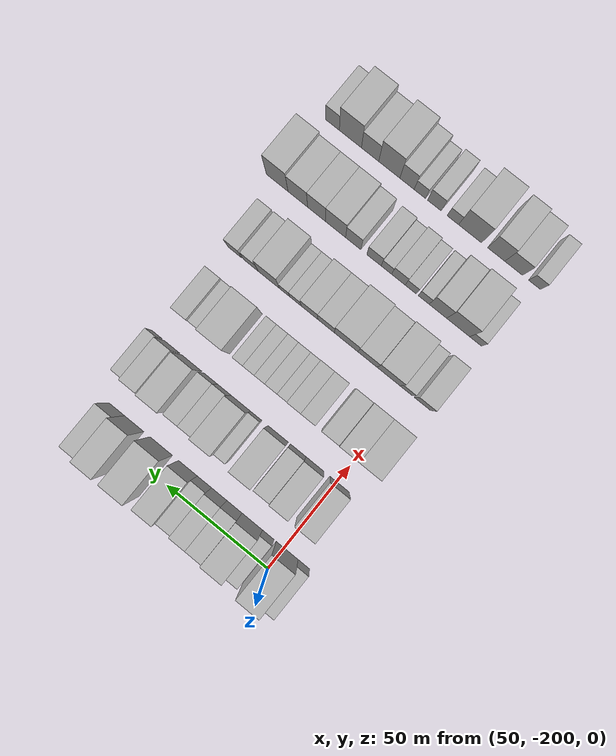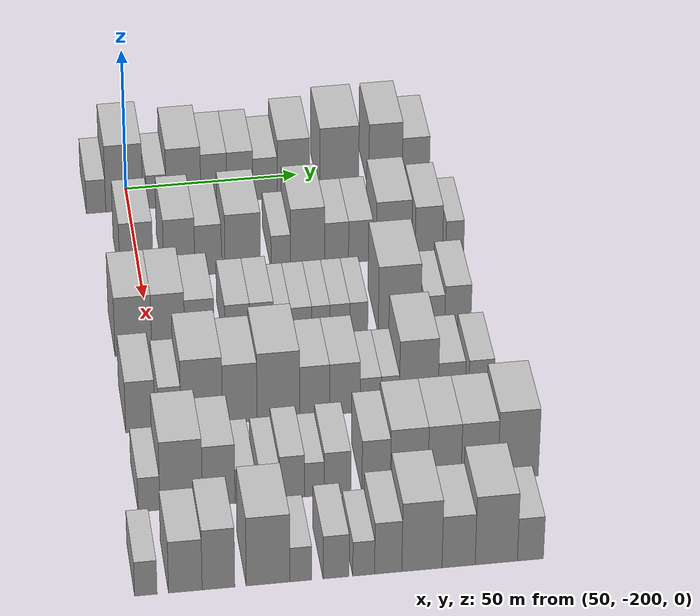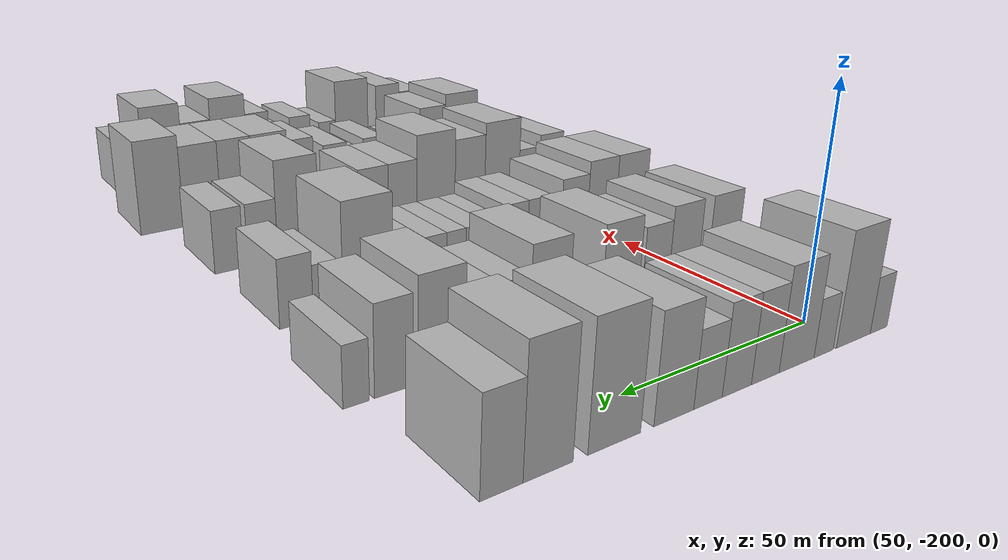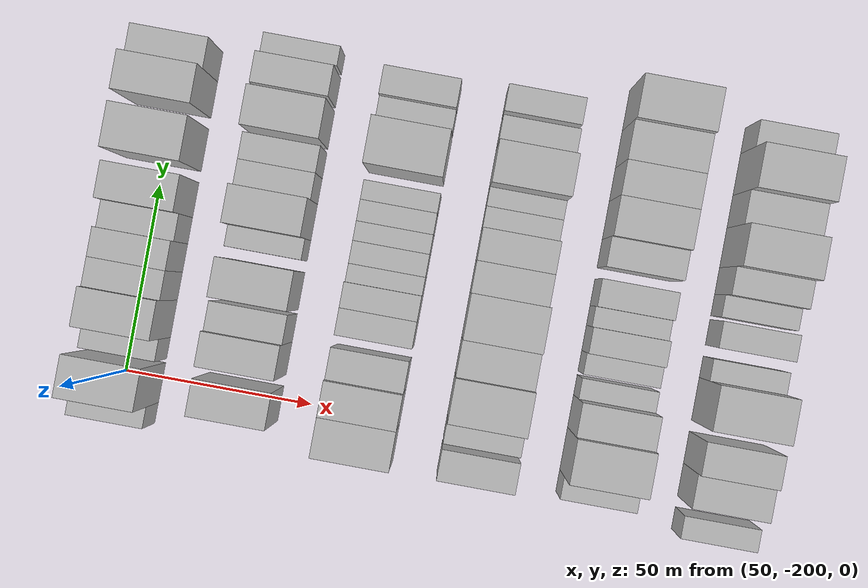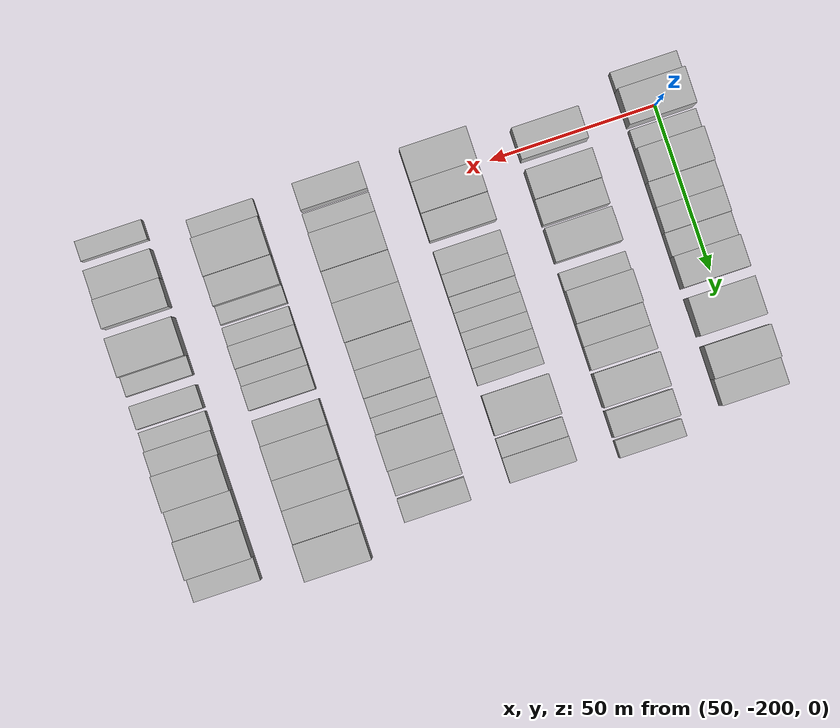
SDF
<sdf version="1.6">
 <world name="default">
  <model name="building_40">
   <static>1</static>
   <pose>50.0000 -209.6688 0 0.000000 0.000000 0.000000</pose>
   <link name="link">
    <pose>0 0 6.00 0 0 0</pose>
    <collision name="collision"><geometry><box><size>20.0000 5.6020 12.0000</size></box></geometry></collision>
    <visual name="visual">
     <cast_shadows>0</cast_shadows>
     <geometry><box><size>20.0000 5.6020 12.0000</size></box></geometry>
     <material>
      <script>
       <uri>model://HANNAS_wall/materials/scripts</uri>
       <uri>model://HANNAS_wall/materials/textures</uri>
       <name>vrc/HANNAS_wall</name>
      </script>
     </material>
    </visual>
   </link>
  </model>
  <model name="building_41">
   <static>1</static>
   <pose>50.0000 -201.4734 0 0.000000 0.000000 0.000000</pose>
   <link name="link">
    <pose>0 0 12.00 0 0 0</pose>
    <collision name="collision"><geometry><box><size>20.0000 10.7889 24.0000</size></box></geometry></collision>
    <visual name="visual">
     <cast_shadows>0</cast_shadows>
     <geometry><box><size>20.0000 10.7889 24.0000</size></box></geometry>
     <material>
      <script>
       <uri>model://HANNAS_wall/materials/scripts</uri>
       <uri>model://HANNAS_wall/materials/textures</uri>
       <name>vrc/HANNAS_wall</name>
      </script>
     </material>
    </visual>
   </link>
  </model>
  <model name="building_42">
   <static>1</static>
   <pose>50.0000 -192.1820 0 0.000000 0.000000 0.000000</pose>
   <link name="link">
    <pose>0 0 6.00 0 0 0</pose>
    <collision name="collision"><geometry><box><size>20.0000 5.7938 12.0000</size></box></geometry></collision>
    <visual name="visual">
     <cast_shadows>0</cast_shadows>
     <geometry><box><size>20.0000 5.7938 12.0000</size></box></geometry>
     <material>
      <script>
       <uri>model://HANNAS_wall/materials/scripts</uri>
       <uri>model://HANNAS_wall/materials/textures</uri>
       <name>vrc/HANNAS_wall</name>
      </script>
     </material>
    </visual>
   </link>
  </model>
  <model name="building_43">
   <static>1</static>
   <pose>50.0000 -184.2456 0 0.000000 0.000000 0.000000</pose>
   <link name="link">
    <pose>0 0 10.50 0 0 0</pose>
    <collision name="collision"><geometry><box><size>20.0000 10.0789 21.0000</size></box></geometry></collision>
    <visual name="visual">
     <cast_shadows>0</cast_shadows>
     <geometry><box><size>20.0000 10.0789 21.0000</size></box></geometry>
     <material>
      <script>
       <uri>model://HANNAS_wall/materials/scripts</uri>
       <uri>model://HANNAS_wall/materials/textures</uri>
       <name>vrc/HANNAS_wall</name>
      </script>
     </material>
    </visual>
   </link>
  </model>
  <model name="building_44">
   <static>1</static>
   <pose>50.0000 -175.4251 0 0.000000 0.000000 0.000000</pose>
   <link name="link">
    <pose>0 0 9.00 0 0 0</pose>
    <collision name="collision"><geometry><box><size>20.0000 7.5622 18.0000</size></box></geometry></collision>
    <visual name="visual">
     <cast_shadows>0</cast_shadows>
     <geometry><box><size>20.0000 7.5622 18.0000</size></box></geometry>
     <material>
      <script>
       <uri>model://HANNAS_wall/materials/scripts</uri>
       <uri>model://HANNAS_wall/materials/textures</uri>
       <name>vrc/HANNAS_wall</name>
      </script>
     </material>
    </visual>
   </link>
  </model>
  <model name="building_45">
   <static>1</static>
   <pose>50.0000 -167.8421 0 0.000000 0.000000 0.000000</pose>
   <link name="link">
    <pose>0 0 9.00 0 0 0</pose>
    <collision name="collision"><geometry><box><size>20.0000 7.6039 18.0000</size></box></geometry></collision>
    <visual name="visual">
     <cast_shadows>0</cast_shadows>
     <geometry><box><size>20.0000 7.6039 18.0000</size></box></geometry>
     <material>
      <script>
       <uri>model://HANNAS_wall/materials/scripts</uri>
       <uri>model://HANNAS_wall/materials/textures</uri>
       <name>vrc/HANNAS_wall</name>
      </script>
     </material>
    </visual>
   </link>
  </model>
  <model name="building_46">
   <static>1</static>
   <pose>50.0000 -160.4901 0 0.000000 0.000000 0.000000</pose>
   <link name="link">
    <pose>0 0 7.50 0 0 0</pose>
    <collision name="collision"><geometry><box><size>20.0000 7.0999 15.0000</size></box></geometry></collision>
    <visual name="visual">
     <cast_shadows>0</cast_shadows>
     <geometry><box><size>20.0000 7.0999 15.0000</size></box></geometry>
     <material>
      <script>
       <uri>model://HANNAS_wall/materials/scripts</uri>
       <uri>model://HANNAS_wall/materials/textures</uri>
       <name>vrc/HANNAS_wall</name>
      </script>
     </material>
    </visual>
   </link>
  </model>
  <model name="building_47">
   <static>1</static>
   <pose>50.0000 -152.2340 0 0.000000 0.000000 0.000000</pose>
   <link name="link">
    <pose>0 0 10.50 0 0 0</pose>
    <collision name="collision"><geometry><box><size>20.0000 9.4122 21.0000</size></box></geometry></collision>
    <visual name="visual">
     <cast_shadows>0</cast_shadows>
     <geometry><box><size>20.0000 9.4122 21.0000</size></box></geometry>
     <material>
      <script>
       <uri>model://HANNAS_wall/materials/scripts</uri>
       <uri>model://HANNAS_wall/materials/textures</uri>
       <name>vrc/HANNAS_wall</name>
      </script>
     </material>
    </visual>
   </link>
  </model>
  <model name="building_48">
   <static>1</static>
   <pose>50.0000 -138.8351 0 0.000000 0.000000 0.000000</pose>
   <link name="link">
    <pose>0 0 12.00 0 0 0</pose>
    <collision name="collision"><geometry><box><size>20.0000 11.3855 24.0000</size></box></geometry></collision>
    <visual name="visual">
     <cast_shadows>0</cast_shadows>
     <geometry><box><size>20.0000 11.3855 24.0000</size></box></geometry>
     <material>
      <script>
       <uri>model://HANNAS_wall/materials/scripts</uri>
       <uri>model://HANNAS_wall/materials/textures</uri>
       <name>vrc/HANNAS_wall</name>
      </script>
     </material>
    </visual>
   </link>
  </model>
  <model name="building_49">
   <static>1</static>
   <pose>50.0000 -125.2403 0 0.000000 0.000000 0.000000</pose>
   <link name="link">
    <pose>0 0 12.00 0 0 0</pose>
    <collision name="collision"><geometry><box><size>20.0000 9.8042 24.0000</size></box></geometry></collision>
    <visual name="visual">
     <cast_shadows>0</cast_shadows>
     <geometry><box><size>20.0000 9.8042 24.0000</size></box></geometry>
     <material>
      <script>
       <uri>model://HANNAS_wall/materials/scripts</uri>
       <uri>model://HANNAS_wall/materials/textures</uri>
       <name>vrc/HANNAS_wall</name>
      </script>
     </material>
    </visual>
   </link>
  </model>
  <model name="building_50">
   <static>1</static>
   <pose>50.0000 -116.3596 0 0.000000 0.000000 0.000000</pose>
   <link name="link">
    <pose>0 0 9.00 0 0 0</pose>
    <collision name="collision"><geometry><box><size>20.0000 7.9570 18.0000</size></box></geometry></collision>
    <visual name="visual">
     <cast_shadows>0</cast_shadows>
     <geometry><box><size>20.0000 7.9570 18.0000</size></box></geometry>
     <material>
      <script>
       <uri>model://HANNAS_wall/materials/scripts</uri>
       <uri>model://HANNAS_wall/materials/textures</uri>
       <name>vrc/HANNAS_wall</name>
      </script>
     </material>
    </visual>
   </link>
  </model>
  <model name="building_166">
   <static>1</static>
   <pose>82.0000 -201.2037 0 0.000000 0.000000 0.000000</pose>
   <link name="link">
    <pose>0 0 10.50 0 0 0</pose>
    <collision name="collision"><geometry><box><size>20.0000 9.4727 21.0000</size></box></geometry></collision>
    <visual name="visual">
     <cast_shadows>0</cast_shadows>
     <geometry><box><size>20.0000 9.4727 21.0000</size></box></geometry>
     <material>
      <script>
       <uri>model://HANNAS_wall/materials/scripts</uri>
       <uri>model://HANNAS_wall/materials/textures</uri>
       <name>vrc/HANNAS_wall</name>
      </script>
     </material>
    </visual>
   </link>
  </model>
  <model name="building_167">
   <static>1</static>
   <pose>82.0000 -189.0316 0 0.000000 0.000000 0.000000</pose>
   <link name="link">
    <pose>0 0 10.50 0 0 0</pose>
    <collision name="collision"><geometry><box><size>20.0000 8.8713 21.0000</size></box></geometry></collision>
    <visual name="visual">
     <cast_shadows>0</cast_shadows>
     <geometry><box><size>20.0000 8.8713 21.0000</size></box></geometry>
     <material>
      <script>
       <uri>model://HANNAS_wall/materials/scripts</uri>
       <uri>model://HANNAS_wall/materials/textures</uri>
       <name>vrc/HANNAS_wall</name>
      </script>
     </material>
    </visual>
   </link>
  </model>
  <model name="building_168">
   <static>1</static>
   <pose>82.0000 -180.7871 0 0.000000 0.000000 0.000000</pose>
   <link name="link">
    <pose>0 0 9.00 0 0 0</pose>
    <collision name="collision"><geometry><box><size>20.0000 7.6177 18.0000</size></box></geometry></collision>
    <visual name="visual">
     <cast_shadows>0</cast_shadows>
     <geometry><box><size>20.0000 7.6177 18.0000</size></box></geometry>
     <material>
      <script>
       <uri>model://HANNAS_wall/materials/scripts</uri>
       <uri>model://HANNAS_wall/materials/textures</uri>
       <name>vrc/HANNAS_wall</name>
      </script>
     </material>
    </visual>
   </link>
  </model>
  <model name="building_169">
   <static>1</static>
   <pose>82.0000 -170.9041 0 0.000000 0.000000 0.000000</pose>
   <link name="link">
    <pose>0 0 10.50 0 0 0</pose>
    <collision name="collision"><geometry><box><size>20.0000 10.1482 21.0000</size></box></geometry></collision>
    <visual name="visual">
     <cast_shadows>0</cast_shadows>
     <geometry><box><size>20.0000 10.1482 21.0000</size></box></geometry>
     <material>
      <script>
       <uri>model://HANNAS_wall/materials/scripts</uri>
       <uri>model://HANNAS_wall/materials/textures</uri>
       <name>vrc/HANNAS_wall</name>
      </script>
     </material>
    </visual>
   </link>
  </model>
  <model name="building_170">
   <static>1</static>
   <pose>82.0000 -160.0525 0 0.000000 0.000000 0.000000</pose>
   <link name="link">
    <pose>0 0 6.00 0 0 0</pose>
    <collision name="collision"><geometry><box><size>20.0000 5.5549 12.0000</size></box></geometry></collision>
    <visual name="visual">
     <cast_shadows>0</cast_shadows>
     <geometry><box><size>20.0000 5.5549 12.0000</size></box></geometry>
     <material>
      <script>
       <uri>model://HANNAS_wall/materials/scripts</uri>
       <uri>model://HANNAS_wall/materials/textures</uri>
       <name>vrc/HANNAS_wall</name>
      </script>
     </material>
    </visual>
   </link>
  </model>
  <model name="building_171">
   <static>1</static>
   <pose>82.0000 -152.3787 0 0.000000 0.000000 0.000000</pose>
   <link name="link">
    <pose>0 0 10.50 0 0 0</pose>
    <collision name="collision"><geometry><box><size>20.0000 9.7927 21.0000</size></box></geometry></collision>
    <visual name="visual">
     <cast_shadows>0</cast_shadows>
     <geometry><box><size>20.0000 9.7927 21.0000</size></box></geometry>
     <material>
      <script>
       <uri>model://HANNAS_wall/materials/scripts</uri>
       <uri>model://HANNAS_wall/materials/textures</uri>
       <name>vrc/HANNAS_wall</name>
      </script>
     </material>
    </visual>
   </link>
  </model>
  <model name="building_172">
   <static>1</static>
   <pose>82.0000 -144.0379 0 0.000000 0.000000 0.000000</pose>
   <link name="link">
    <pose>0 0 7.50 0 0 0</pose>
    <collision name="collision"><geometry><box><size>20.0000 6.8888 15.0000</size></box></geometry></collision>
    <visual name="visual">
     <cast_shadows>0</cast_shadows>
     <geometry><box><size>20.0000 6.8888 15.0000</size></box></geometry>
     <material>
      <script>
       <uri>model://HANNAS_wall/materials/scripts</uri>
       <uri>model://HANNAS_wall/materials/textures</uri>
       <name>vrc/HANNAS_wall</name>
      </script>
     </material>
    </visual>
   </link>
  </model>
  <model name="building_173">
   <static>1</static>
   <pose>82.0000 -137.1095 0 0.000000 0.000000 0.000000</pose>
   <link name="link">
    <pose>0 0 7.50 0 0 0</pose>
    <collision name="collision"><geometry><box><size>20.0000 6.9681 15.0000</size></box></geometry></collision>
    <visual name="visual">
     <cast_shadows>0</cast_shadows>
     <geometry><box><size>20.0000 6.9681 15.0000</size></box></geometry>
     <material>
      <script>
       <uri>model://HANNAS_wall/materials/scripts</uri>
       <uri>model://HANNAS_wall/materials/textures</uri>
       <name>vrc/HANNAS_wall</name>
      </script>
     </material>
    </visual>
   </link>
  </model>
  <model name="building_174">
   <static>1</static>
   <pose>82.0000 -127.5402 0 0.000000 0.000000 0.000000</pose>
   <link name="link">
    <pose>0 0 10.50 0 0 0</pose>
    <collision name="collision"><geometry><box><size>20.0000 10.1705 21.0000</size></box></geometry></collision>
    <visual name="visual">
     <cast_shadows>0</cast_shadows>
     <geometry><box><size>20.0000 10.1705 21.0000</size></box></geometry>
     <material>
      <script>
       <uri>model://HANNAS_wall/materials/scripts</uri>
       <uri>model://HANNAS_wall/materials/textures</uri>
       <name>vrc/HANNAS_wall</name>
      </script>
     </material>
    </visual>
   </link>
  </model>
  <model name="building_175">
   <static>1</static>
   <pose>82.0000 -117.4923 0 0.000000 0.000000 0.000000</pose>
   <link name="link">
    <pose>0 0 9.00 0 0 0</pose>
    <collision name="collision"><geometry><box><size>20.0000 7.9252 18.0000</size></box></geometry></collision>
    <visual name="visual">
     <cast_shadows>0</cast_shadows>
     <geometry><box><size>20.0000 7.9252 18.0000</size></box></geometry>
     <material>
      <script>
       <uri>model://HANNAS_wall/materials/scripts</uri>
       <uri>model://HANNAS_wall/materials/textures</uri>
       <name>vrc/HANNAS_wall</name>
      </script>
     </material>
    </visual>
   </link>
  </model>
  <model name="building_176">
   <static>1</static>
   <pose>82.0000 -109.9590 0 0.000000 0.000000 0.000000</pose>
   <link name="link">
    <pose>0 0 6.00 0 0 0</pose>
    <collision name="collision"><geometry><box><size>20.0000 5.1414 12.0000</size></box></geometry></collision>
    <visual name="visual">
     <cast_shadows>0</cast_shadows>
     <geometry><box><size>20.0000 5.1414 12.0000</size></box></geometry>
     <material>
      <script>
       <uri>model://HANNAS_wall/materials/scripts</uri>
       <uri>model://HANNAS_wall/materials/textures</uri>
       <name>vrc/HANNAS_wall</name>
      </script>
     </material>
    </visual>
   </link>
  </model>
  <model name="building_285">
   <static>1</static>
   <pose>114.0000 -205.4262 0 0.000000 0.000000 0.000000</pose>
   <link name="link">
    <pose>0 0 10.50 0 0 0</pose>
    <collision name="collision"><geometry><box><size>20.0000 10.2493 21.0000</size></box></geometry></collision>
    <visual name="visual">
     <cast_shadows>0</cast_shadows>
     <geometry><box><size>20.0000 10.2493 21.0000</size></box></geometry>
     <material>
      <script>
       <uri>model://HANNAS_wall/materials/scripts</uri>
       <uri>model://HANNAS_wall/materials/textures</uri>
       <name>vrc/HANNAS_wall</name>
      </script>
     </material>
    </visual>
   </link>
  </model>
  <model name="building_286">
   <static>1</static>
   <pose>114.0000 -195.6863 0 0.000000 0.000000 0.000000</pose>
   <link name="link">
    <pose>0 0 10.50 0 0 0</pose>
    <collision name="collision"><geometry><box><size>20.0000 9.2305 21.0000</size></box></geometry></collision>
    <visual name="visual">
     <cast_shadows>0</cast_shadows>
     <geometry><box><size>20.0000 9.2305 21.0000</size></box></geometry>
     <material>
      <script>
       <uri>model://HANNAS_wall/materials/scripts</uri>
       <uri>model://HANNAS_wall/materials/textures</uri>
       <name>vrc/HANNAS_wall</name>
      </script>
     </material>
    </visual>
   </link>
  </model>
  <model name="building_287">
   <static>1</static>
   <pose>114.0000 -186.9606 0 0.000000 0.000000 0.000000</pose>
   <link name="link">
    <pose>0 0 9.00 0 0 0</pose>
    <collision name="collision"><geometry><box><size>20.0000 8.2209 18.0000</size></box></geometry></collision>
    <visual name="visual">
     <cast_shadows>0</cast_shadows>
     <geometry><box><size>20.0000 8.2209 18.0000</size></box></geometry>
     <material>
      <script>
       <uri>model://HANNAS_wall/materials/scripts</uri>
       <uri>model://HANNAS_wall/materials/textures</uri>
       <name>vrc/HANNAS_wall</name>
      </script>
     </material>
    </visual>
   </link>
  </model>
  <model name="building_288">
   <static>1</static>
   <pose>114.0000 -176.3596 0 0.000000 0.000000 0.000000</pose>
   <link name="link">
    <pose>0 0 7.50 0 0 0</pose>
    <collision name="collision"><geometry><box><size>20.0000 6.9811 15.0000</size></box></geometry></collision>
    <visual name="visual">
     <cast_shadows>0</cast_shadows>
     <geometry><box><size>20.0000 6.9811 15.0000</size></box></geometry>
     <material>
      <script>
       <uri>model://HANNAS_wall/materials/scripts</uri>
       <uri>model://HANNAS_wall/materials/textures</uri>
       <name>vrc/HANNAS_wall</name>
      </script>
     </material>
    </visual>
   </link>
  </model>
  <model name="building_289">
   <static>1</static>
   <pose>114.0000 -169.5409 0 0.000000 0.000000 0.000000</pose>
   <link name="link">
    <pose>0 0 7.50 0 0 0</pose>
    <collision name="collision"><geometry><box><size>20.0000 6.6562 15.0000</size></box></geometry></collision>
    <visual name="visual">
     <cast_shadows>0</cast_shadows>
     <geometry><box><size>20.0000 6.6562 15.0000</size></box></geometry>
     <material>
      <script>
       <uri>model://HANNAS_wall/materials/scripts</uri>
       <uri>model://HANNAS_wall/materials/textures</uri>
       <name>vrc/HANNAS_wall</name>
      </script>
     </material>
    </visual>
   </link>
  </model>
  <model name="building_290">
   <static>1</static>
   <pose>114.0000 -163.8046 0 0.000000 0.000000 0.000000</pose>
   <link name="link">
    <pose>0 0 6.00 0 0 0</pose>
    <collision name="collision"><geometry><box><size>20.0000 4.8164 12.0000</size></box></geometry></collision>
    <visual name="visual">
     <cast_shadows>0</cast_shadows>
     <geometry><box><size>20.0000 4.8164 12.0000</size></box></geometry>
     <material>
      <script>
       <uri>model://HANNAS_wall/materials/scripts</uri>
       <uri>model://HANNAS_wall/materials/textures</uri>
       <name>vrc/HANNAS_wall</name>
      </script>
     </material>
    </visual>
   </link>
  </model>
  <model name="building_291">
   <static>1</static>
   <pose>114.0000 -158.4305 0 0.000000 0.000000 0.000000</pose>
   <link name="link">
    <pose>0 0 6.00 0 0 0</pose>
    <collision name="collision"><geometry><box><size>20.0000 5.9319 12.0000</size></box></geometry></collision>
    <visual name="visual">
     <cast_shadows>0</cast_shadows>
     <geometry><box><size>20.0000 5.9319 12.0000</size></box></geometry>
     <material>
      <script>
       <uri>model://HANNAS_wall/materials/scripts</uri>
       <uri>model://HANNAS_wall/materials/textures</uri>
       <name>vrc/HANNAS_wall</name>
      </script>
     </material>
    </visual>
   </link>
  </model>
  <model name="building_292">
   <static>1</static>
   <pose>114.0000 -152.9170 0 0.000000 0.000000 0.000000</pose>
   <link name="link">
    <pose>0 0 6.00 0 0 0</pose>
    <collision name="collision"><geometry><box><size>20.0000 5.0951 12.0000</size></box></geometry></collision>
    <visual name="visual">
     <cast_shadows>0</cast_shadows>
     <geometry><box><size>20.0000 5.0951 12.0000</size></box></geometry>
     <material>
      <script>
       <uri>model://HANNAS_wall/materials/scripts</uri>
       <uri>model://HANNAS_wall/materials/textures</uri>
       <name>vrc/HANNAS_wall</name>
      </script>
     </material>
    </visual>
   </link>
  </model>
  <model name="building_293">
   <static>1</static>
   <pose>114.0000 -147.5817 0 0.000000 0.000000 0.000000</pose>
   <link name="link">
    <pose>0 0 6.00 0 0 0</pose>
    <collision name="collision"><geometry><box><size>20.0000 5.5754 12.0000</size></box></geometry></collision>
    <visual name="visual">
     <cast_shadows>0</cast_shadows>
     <geometry><box><size>20.0000 5.5754 12.0000</size></box></geometry>
     <material>
      <script>
       <uri>model://HANNAS_wall/materials/scripts</uri>
       <uri>model://HANNAS_wall/materials/textures</uri>
       <name>vrc/HANNAS_wall</name>
      </script>
     </material>
    </visual>
   </link>
  </model>
  <model name="building_294">
   <static>1</static>
   <pose>114.0000 -142.2544 0 0.000000 0.000000 0.000000</pose>
   <link name="link">
    <pose>0 0 6.00 0 0 0</pose>
    <collision name="collision"><geometry><box><size>20.0000 5.0793 12.0000</size></box></geometry></collision>
    <visual name="visual">
     <cast_shadows>0</cast_shadows>
     <geometry><box><size>20.0000 5.0793 12.0000</size></box></geometry>
     <material>
      <script>
       <uri>model://HANNAS_wall/materials/scripts</uri>
       <uri>model://HANNAS_wall/materials/textures</uri>
       <name>vrc/HANNAS_wall</name>
      </script>
     </material>
    </visual>
   </link>
  </model>
  <model name="building_295">
   <static>1</static>
   <pose>114.0000 -130.7469 0 0.000000 0.000000 0.000000</pose>
   <link name="link">
    <pose>0 0 12.00 0 0 0</pose>
    <collision name="collision"><geometry><box><size>20.0000 11.9358 24.0000</size></box></geometry></collision>
    <visual name="visual">
     <cast_shadows>0</cast_shadows>
     <geometry><box><size>20.0000 11.9358 24.0000</size></box></geometry>
     <material>
      <script>
       <uri>model://HANNAS_wall/materials/scripts</uri>
       <uri>model://HANNAS_wall/materials/textures</uri>
       <name>vrc/HANNAS_wall</name>
      </script>
     </material>
    </visual>
   </link>
  </model>
  <model name="building_296">
   <static>1</static>
   <pose>114.0000 -120.8770 0 0.000000 0.000000 0.000000</pose>
   <link name="link">
    <pose>0 0 6.00 0 0 0</pose>
    <collision name="collision"><geometry><box><size>20.0000 5.8039 12.0000</size></box></geometry></collision>
    <visual name="visual">
     <cast_shadows>0</cast_shadows>
     <geometry><box><size>20.0000 5.8039 12.0000</size></box></geometry>
     <material>
      <script>
       <uri>model://HANNAS_wall/materials/scripts</uri>
       <uri>model://HANNAS_wall/materials/textures</uri>
       <name>vrc/HANNAS_wall</name>
      </script>
     </material>
    </visual>
   </link>
  </model>
  <model name="building_297">
   <static>1</static>
   <pose>114.0000 -114.2618 0 0.000000 0.000000 0.000000</pose>
   <link name="link">
    <pose>0 0 7.50 0 0 0</pose>
    <collision name="collision"><geometry><box><size>20.0000 7.4265 15.0000</size></box></geometry></collision>
    <visual name="visual">
     <cast_shadows>0</cast_shadows>
     <geometry><box><size>20.0000 7.4265 15.0000</size></box></geometry>
     <material>
      <script>
       <uri>model://HANNAS_wall/materials/scripts</uri>
       <uri>model://HANNAS_wall/materials/textures</uri>
       <name>vrc/HANNAS_wall</name>
      </script>
     </material>
    </visual>
   </link>
  </model>
  <model name="building_408">
   <static>1</static>
   <pose>146.0000 -206.8201 0 0.000000 0.000000 0.000000</pose>
   <link name="link">
    <pose>0 0 9.00 0 0 0</pose>
    <collision name="collision"><geometry><box><size>20.0000 8.0028 18.0000</size></box></geometry></collision>
    <visual name="visual">
     <cast_shadows>0</cast_shadows>
     <geometry><box><size>20.0000 8.0028 18.0000</size></box></geometry>
     <material>
      <script>
       <uri>model://HANNAS_wall/materials/scripts</uri>
       <uri>model://HANNAS_wall/materials/textures</uri>
       <name>vrc/HANNAS_wall</name>
      </script>
     </material>
    </visual>
   </link>
  </model>
  <model name="building_409">
   <static>1</static>
   <pose>146.0000 -198.7676 0 0.000000 0.000000 0.000000</pose>
   <link name="link">
    <pose>0 0 7.50 0 0 0</pose>
    <collision name="collision"><geometry><box><size>20.0000 6.1021 15.0000</size></box></geometry></collision>
    <visual name="visual">
     <cast_shadows>0</cast_shadows>
     <geometry><box><size>20.0000 6.1021 15.0000</size></box></geometry>
     <material>
      <script>
       <uri>model://HANNAS_wall/materials/scripts</uri>
       <uri>model://HANNAS_wall/materials/textures</uri>
       <name>vrc/HANNAS_wall</name>
      </script>
     </material>
    </visual>
   </link>
  </model>
  <model name="building_410">
   <static>1</static>
   <pose>146.0000 -190.0217 0 0.000000 0.000000 0.000000</pose>
   <link name="link">
    <pose>0 0 12.00 0 0 0</pose>
    <collision name="collision"><geometry><box><size>20.0000 11.3897 24.0000</size></box></geometry></collision>
    <visual name="visual">
     <cast_shadows>0</cast_shadows>
     <geometry><box><size>20.0000 11.3897 24.0000</size></box></geometry>
     <material>
      <script>
       <uri>model://HANNAS_wall/materials/scripts</uri>
       <uri>model://HANNAS_wall/materials/textures</uri>
       <name>vrc/HANNAS_wall</name>
      </script>
     </material>
    </visual>
   </link>
  </model>
  <model name="building_411">
   <static>1</static>
   <pose>146.0000 -179.5818 0 0.000000 0.000000 0.000000</pose>
   <link name="link">
    <pose>0 0 10.50 0 0 0</pose>
    <collision name="collision"><geometry><box><size>20.0000 9.4901 21.0000</size></box></geometry></collision>
    <visual name="visual">
     <cast_shadows>0</cast_shadows>
     <geometry><box><size>20.0000 9.4901 21.0000</size></box></geometry>
     <material>
      <script>
       <uri>model://HANNAS_wall/materials/scripts</uri>
       <uri>model://HANNAS_wall/materials/textures</uri>
       <name>vrc/HANNAS_wall</name>
      </script>
     </material>
    </visual>
   </link>
  </model>
  <model name="building_412">
   <static>1</static>
   <pose>146.0000 -169.0032 0 0.000000 0.000000 0.000000</pose>
   <link name="link">
    <pose>0 0 12.00 0 0 0</pose>
    <collision name="collision"><geometry><box><size>20.0000 11.6671 24.0000</size></box></geometry></collision>
    <visual name="visual">
     <cast_shadows>0</cast_shadows>
     <geometry><box><size>20.0000 11.6671 24.0000</size></box></geometry>
     <material>
      <script>
       <uri>model://HANNAS_wall/materials/scripts</uri>
       <uri>model://HANNAS_wall/materials/textures</uri>
       <name>vrc/HANNAS_wall</name>
      </script>
     </material>
    </visual>
   </link>
  </model>
  <model name="building_413">
   <static>1</static>
   <pose>146.0000 -159.0186 0 0.000000 0.000000 0.000000</pose>
   <link name="link">
    <pose>0 0 9.00 0 0 0</pose>
    <collision name="collision"><geometry><box><size>20.0000 8.3022 18.0000</size></box></geometry></collision>
    <visual name="visual">
     <cast_shadows>0</cast_shadows>
     <geometry><box><size>20.0000 8.3022 18.0000</size></box></geometry>
     <material>
      <script>
       <uri>model://HANNAS_wall/materials/scripts</uri>
       <uri>model://HANNAS_wall/materials/textures</uri>
       <name>vrc/HANNAS_wall</name>
      </script>
     </material>
    </visual>
   </link>
  </model>
  <model name="building_414">
   <static>1</static>
   <pose>146.0000 -150.6587 0 0.000000 0.000000 0.000000</pose>
   <link name="link">
    <pose>0 0 9.00 0 0 0</pose>
    <collision name="collision"><geometry><box><size>20.0000 8.4176 18.0000</size></box></geometry></collision>
    <visual name="visual">
     <cast_shadows>0</cast_shadows>
     <geometry><box><size>20.0000 8.4176 18.0000</size></box></geometry>
     <material>
      <script>
       <uri>model://HANNAS_wall/materials/scripts</uri>
       <uri>model://HANNAS_wall/materials/textures</uri>
       <name>vrc/HANNAS_wall</name>
      </script>
     </material>
    </visual>
   </link>
  </model>
  <model name="building_415">
   <static>1</static>
   <pose>146.0000 -143.5443 0 0.000000 0.000000 0.000000</pose>
   <link name="link">
    <pose>0 0 6.00 0 0 0</pose>
    <collision name="collision"><geometry><box><size>20.0000 5.8112 12.0000</size></box></geometry></collision>
    <visual name="visual">
     <cast_shadows>0</cast_shadows>
     <geometry><box><size>20.0000 5.8112 12.0000</size></box></geometry>
     <material>
      <script>
       <uri>model://HANNAS_wall/materials/scripts</uri>
       <uri>model://HANNAS_wall/materials/textures</uri>
       <name>vrc/HANNAS_wall</name>
      </script>
     </material>
    </visual>
   </link>
  </model>
  <model name="building_416">
   <static>1</static>
   <pose>146.0000 -138.1395 0 0.000000 0.000000 0.000000</pose>
   <link name="link">
    <pose>0 0 6.00 0 0 0</pose>
    <collision name="collision"><geometry><box><size>20.0000 4.9985 12.0000</size></box></geometry></collision>
    <visual name="visual">
     <cast_shadows>0</cast_shadows>
     <geometry><box><size>20.0000 4.9985 12.0000</size></box></geometry>
     <material>
      <script>
       <uri>model://HANNAS_wall/materials/scripts</uri>
       <uri>model://HANNAS_wall/materials/textures</uri>
       <name>vrc/HANNAS_wall</name>
      </script>
     </material>
    </visual>
   </link>
  </model>
  <model name="building_417">
   <static>1</static>
   <pose>146.0000 -130.2629 0 0.000000 0.000000 0.000000</pose>
   <link name="link">
    <pose>0 0 12.00 0 0 0</pose>
    <collision name="collision"><geometry><box><size>20.0000 10.7547 24.0000</size></box></geometry></collision>
    <visual name="visual">
     <cast_shadows>0</cast_shadows>
     <geometry><box><size>20.0000 10.7547 24.0000</size></box></geometry>
     <material>
      <script>
       <uri>model://HANNAS_wall/materials/scripts</uri>
       <uri>model://HANNAS_wall/materials/textures</uri>
       <name>vrc/HANNAS_wall</name>
      </script>
     </material>
    </visual>
   </link>
  </model>
  <model name="building_418">
   <static>1</static>
   <pose>146.0000 -121.1619 0 0.000000 0.000000 0.000000</pose>
   <link name="link">
    <pose>0 0 7.50 0 0 0</pose>
    <collision name="collision"><geometry><box><size>20.0000 7.4474 15.0000</size></box></geometry></collision>
    <visual name="visual">
     <cast_shadows>0</cast_shadows>
     <geometry><box><size>20.0000 7.4474 15.0000</size></box></geometry>
     <material>
      <script>
       <uri>model://HANNAS_wall/materials/scripts</uri>
       <uri>model://HANNAS_wall/materials/textures</uri>
       <name>vrc/HANNAS_wall</name>
      </script>
     </material>
    </visual>
   </link>
  </model>
  <model name="building_419">
   <static>1</static>
   <pose>146.0000 -112.9660 0 0.000000 0.000000 0.000000</pose>
   <link name="link">
    <pose>0 0 7.50 0 0 0</pose>
    <collision name="collision"><geometry><box><size>20.0000 6.9444 15.0000</size></box></geometry></collision>
    <visual name="visual">
     <cast_shadows>0</cast_shadows>
     <geometry><box><size>20.0000 6.9444 15.0000</size></box></geometry>
     <material>
      <script>
       <uri>model://HANNAS_wall/materials/scripts</uri>
       <uri>model://HANNAS_wall/materials/textures</uri>
       <name>vrc/HANNAS_wall</name>
      </script>
     </material>
    </visual>
   </link>
  </model>
  <model name="building_529">
   <static>1</static>
   <pose>178.0000 -207.8380 0 0.000000 0.000000 0.000000</pose>
   <link name="link">
    <pose>0 0 6.00 0 0 0</pose>
    <collision name="collision"><geometry><box><size>20.0000 5.8459 12.0000</size></box></geometry></collision>
    <visual name="visual">
     <cast_shadows>0</cast_shadows>
     <geometry><box><size>20.0000 5.8459 12.0000</size></box></geometry>
     <material>
      <script>
       <uri>model://HANNAS_wall/materials/scripts</uri>
       <uri>model://HANNAS_wall/materials/textures</uri>
       <name>vrc/HANNAS_wall</name>
      </script>
     </material>
    </visual>
   </link>
  </model>
  <model name="building_530">
   <static>1</static>
   <pose>178.0000 -199.2140 0 0.000000 0.000000 0.000000</pose>
   <link name="link">
    <pose>0 0 12.00 0 0 0</pose>
    <collision name="collision"><geometry><box><size>20.0000 11.4022 24.0000</size></box></geometry></collision>
    <visual name="visual">
     <cast_shadows>0</cast_shadows>
     <geometry><box><size>20.0000 11.4022 24.0000</size></box></geometry>
     <material>
      <script>
       <uri>model://HANNAS_wall/materials/scripts</uri>
       <uri>model://HANNAS_wall/materials/textures</uri>
       <name>vrc/HANNAS_wall</name>
      </script>
     </material>
    </visual>
   </link>
  </model>
  <model name="building_531">
   <static>1</static>
   <pose>178.0000 -189.1437 0 0.000000 0.000000 0.000000</pose>
   <link name="link">
    <pose>0 0 10.50 0 0 0</pose>
    <collision name="collision"><geometry><box><size>20.0000 8.7384 21.0000</size></box></geometry></collision>
    <visual name="visual">
     <cast_shadows>0</cast_shadows>
     <geometry><box><size>20.0000 8.7384 21.0000</size></box></geometry>
     <material>
      <script>
       <uri>model://HANNAS_wall/materials/scripts</uri>
       <uri>model://HANNAS_wall/materials/textures</uri>
       <name>vrc/HANNAS_wall</name>
      </script>
     </material>
    </visual>
   </link>
  </model>
  <model name="building_532">
   <static>1</static>
   <pose>178.0000 -182.0580 0 0.000000 0.000000 0.000000</pose>
   <link name="link">
    <pose>0 0 6.00 0 0 0</pose>
    <collision name="collision"><geometry><box><size>20.0000 5.4330 12.0000</size></box></geometry></collision>
    <visual name="visual">
     <cast_shadows>0</cast_shadows>
     <geometry><box><size>20.0000 5.4330 12.0000</size></box></geometry>
     <material>
      <script>
       <uri>model://HANNAS_wall/materials/scripts</uri>
       <uri>model://HANNAS_wall/materials/textures</uri>
       <name>vrc/HANNAS_wall</name>
      </script>
     </material>
    </visual>
   </link>
  </model>
  <model name="building_533">
   <static>1</static>
   <pose>178.0000 -175.5714 0 0.000000 0.000000 0.000000</pose>
   <link name="link">
    <pose>0 0 6.00 0 0 0</pose>
    <collision name="collision"><geometry><box><size>20.0000 5.5402 12.0000</size></box></geometry></collision>
    <visual name="visual">
     <cast_shadows>0</cast_shadows>
     <geometry><box><size>20.0000 5.5402 12.0000</size></box></geometry>
     <material>
      <script>
       <uri>model://HANNAS_wall/materials/scripts</uri>
       <uri>model://HANNAS_wall/materials/textures</uri>
       <name>vrc/HANNAS_wall</name>
      </script>
     </material>
    </visual>
   </link>
  </model>
  <model name="building_534">
   <static>1</static>
   <pose>178.0000 -169.4165 0 0.000000 0.000000 0.000000</pose>
   <link name="link">
    <pose>0 0 7.50 0 0 0</pose>
    <collision name="collision"><geometry><box><size>20.0000 6.7697 15.0000</size></box></geometry></collision>
    <visual name="visual">
     <cast_shadows>0</cast_shadows>
     <geometry><box><size>20.0000 6.7697 15.0000</size></box></geometry>
     <material>
      <script>
       <uri>model://HANNAS_wall/materials/scripts</uri>
       <uri>model://HANNAS_wall/materials/textures</uri>
       <name>vrc/HANNAS_wall</name>
      </script>
     </material>
    </visual>
   </link>
  </model>
  <model name="building_535">
   <static>1</static>
   <pose>178.0000 -163.3862 0 0.000000 0.000000 0.000000</pose>
   <link name="link">
    <pose>0 0 6.00 0 0 0</pose>
    <collision name="collision"><geometry><box><size>20.0000 5.2909 12.0000</size></box></geometry></collision>
    <visual name="visual">
     <cast_shadows>0</cast_shadows>
     <geometry><box><size>20.0000 5.2909 12.0000</size></box></geometry>
     <material>
      <script>
       <uri>model://HANNAS_wall/materials/scripts</uri>
       <uri>model://HANNAS_wall/materials/textures</uri>
       <name>vrc/HANNAS_wall</name>
      </script>
     </material>
    </visual>
   </link>
  </model>
  <model name="building_536">
   <static>1</static>
   <pose>178.0000 -157.1457 0 0.000000 0.000000 0.000000</pose>
   <link name="link">
    <pose>0 0 7.50 0 0 0</pose>
    <collision name="collision"><geometry><box><size>20.0000 7.1901 15.0000</size></box></geometry></collision>
    <visual name="visual">
     <cast_shadows>0</cast_shadows>
     <geometry><box><size>20.0000 7.1901 15.0000</size></box></geometry>
     <material>
      <script>
       <uri>model://HANNAS_wall/materials/scripts</uri>
       <uri>model://HANNAS_wall/materials/textures</uri>
       <name>vrc/HANNAS_wall</name>
      </script>
     </material>
    </visual>
   </link>
  </model>
  <model name="building_537">
   <static>1</static>
   <pose>178.0000 -146.7079 0 0.000000 0.000000 0.000000</pose>
   <link name="link">
    <pose>0 0 9.00 0 0 0</pose>
    <collision name="collision"><geometry><box><size>20.0000 7.6855 18.0000</size></box></geometry></collision>
    <visual name="visual">
     <cast_shadows>0</cast_shadows>
     <geometry><box><size>20.0000 7.6855 18.0000</size></box></geometry>
     <material>
      <script>
       <uri>model://HANNAS_wall/materials/scripts</uri>
       <uri>model://HANNAS_wall/materials/textures</uri>
       <name>vrc/HANNAS_wall</name>
      </script>
     </material>
    </visual>
   </link>
  </model>
  <model name="building_538">
   <static>1</static>
   <pose>178.0000 -137.7575 0 0.000000 0.000000 0.000000</pose>
   <link name="link">
    <pose>0 0 10.50 0 0 0</pose>
    <collision name="collision"><geometry><box><size>20.0000 10.2153 21.0000</size></box></geometry></collision>
    <visual name="visual">
     <cast_shadows>0</cast_shadows>
     <geometry><box><size>20.0000 10.2153 21.0000</size></box></geometry>
     <material>
      <script>
       <uri>model://HANNAS_wall/materials/scripts</uri>
       <uri>model://HANNAS_wall/materials/textures</uri>
       <name>vrc/HANNAS_wall</name>
      </script>
     </material>
    </visual>
   </link>
  </model>
  <model name="building_539">
   <static>1</static>
   <pose>178.0000 -128.1602 0 0.000000 0.000000 0.000000</pose>
   <link name="link">
    <pose>0 0 10.50 0 0 0</pose>
    <collision name="collision"><geometry><box><size>20.0000 8.9793 21.0000</size></box></geometry></collision>
    <visual name="visual">
     <cast_shadows>0</cast_shadows>
     <geometry><box><size>20.0000 8.9793 21.0000</size></box></geometry>
     <material>
      <script>
       <uri>model://HANNAS_wall/materials/scripts</uri>
       <uri>model://HANNAS_wall/materials/textures</uri>
       <name>vrc/HANNAS_wall</name>
      </script>
     </material>
    </visual>
   </link>
  </model>
  <model name="building_540">
   <static>1</static>
   <pose>178.0000 -118.6726 0 0.000000 0.000000 0.000000</pose>
   <link name="link">
    <pose>0 0 10.50 0 0 0</pose>
    <collision name="collision"><geometry><box><size>20.0000 9.9959 21.0000</size></box></geometry></collision>
    <visual name="visual">
     <cast_shadows>0</cast_shadows>
     <geometry><box><size>20.0000 9.9959 21.0000</size></box></geometry>
     <material>
      <script>
       <uri>model://HANNAS_wall/materials/scripts</uri>
       <uri>model://HANNAS_wall/materials/textures</uri>
       <name>vrc/HANNAS_wall</name>
      </script>
     </material>
    </visual>
   </link>
  </model>
  <model name="building_541">
   <static>1</static>
   <pose>178.0000 -108.1667 0 0.000000 0.000000 0.000000</pose>
   <link name="link">
    <pose>0 0 12.00 0 0 0</pose>
    <collision name="collision"><geometry><box><size>20.0000 11.0160 24.0000</size></box></geometry></collision>
    <visual name="visual">
     <cast_shadows>0</cast_shadows>
     <geometry><box><size>20.0000 11.0160 24.0000</size></box></geometry>
     <material>
      <script>
       <uri>model://HANNAS_wall/materials/scripts</uri>
       <uri>model://HANNAS_wall/materials/textures</uri>
       <name>vrc/HANNAS_wall</name>
      </script>
     </material>
    </visual>
   </link>
  </model>
  <model name="building_644">
   <static>1</static>
   <pose>210.0000 -212.0748 0 0.000000 0.000000 0.000000</pose>
   <link name="link">
    <pose>0 0 6.00 0 0 0</pose>
    <collision name="collision"><geometry><box><size>20.0000 5.8930 12.0000</size></box></geometry></collision>
    <visual name="visual">
     <cast_shadows>0</cast_shadows>
     <geometry><box><size>20.0000 5.8930 12.0000</size></box></geometry>
     <material>
      <script>
       <uri>model://HANNAS_wall/materials/scripts</uri>
       <uri>model://HANNAS_wall/materials/textures</uri>
       <name>vrc/HANNAS_wall</name>
      </script>
     </material>
    </visual>
   </link>
  </model>
  <model name="building_645">
   <static>1</static>
   <pose>210.0000 -201.7168 0 0.000000 0.000000 0.000000</pose>
   <link name="link">
    <pose>0 0 9.00 0 0 0</pose>
    <collision name="collision"><geometry><box><size>20.0000 8.8230 18.0000</size></box></geometry></collision>
    <visual name="visual">
     <cast_shadows>0</cast_shadows>
     <geometry><box><size>20.0000 8.8230 18.0000</size></box></geometry>
     <material>
      <script>
       <uri>model://HANNAS_wall/materials/scripts</uri>
       <uri>model://HANNAS_wall/materials/textures</uri>
       <name>vrc/HANNAS_wall</name>
      </script>
     </material>
    </visual>
   </link>
  </model>
  <model name="building_646">
   <static>1</static>
   <pose>210.0000 -193.0057 0 0.000000 0.000000 0.000000</pose>
   <link name="link">
    <pose>0 0 10.50 0 0 0</pose>
    <collision name="collision"><geometry><box><size>20.0000 8.5991 21.0000</size></box></geometry></collision>
    <visual name="visual">
     <cast_shadows>0</cast_shadows>
     <geometry><box><size>20.0000 8.5991 21.0000</size></box></geometry>
     <material>
      <script>
       <uri>model://HANNAS_wall/materials/scripts</uri>
       <uri>model://HANNAS_wall/materials/textures</uri>
       <name>vrc/HANNAS_wall</name>
      </script>
     </material>
    </visual>
   </link>
  </model>
  <model name="building_647">
   <static>1</static>
   <pose>210.0000 -179.9498 0 0.000000 0.000000 0.000000</pose>
   <link name="link">
    <pose>0 0 12.00 0 0 0</pose>
    <collision name="collision"><geometry><box><size>20.0000 11.5128 24.0000</size></box></geometry></collision>
    <visual name="visual">
     <cast_shadows>0</cast_shadows>
     <geometry><box><size>20.0000 11.5128 24.0000</size></box></geometry>
     <material>
      <script>
       <uri>model://HANNAS_wall/materials/scripts</uri>
       <uri>model://HANNAS_wall/materials/textures</uri>
       <name>vrc/HANNAS_wall</name>
      </script>
     </material>
    </visual>
   </link>
  </model>
  <model name="building_648">
   <static>1</static>
   <pose>210.0000 -171.3120 0 0.000000 0.000000 0.000000</pose>
   <link name="link">
    <pose>0 0 6.00 0 0 0</pose>
    <collision name="collision"><geometry><box><size>20.0000 5.7628 12.0000</size></box></geometry></collision>
    <visual name="visual">
     <cast_shadows>0</cast_shadows>
     <geometry><box><size>20.0000 5.7628 12.0000</size></box></geometry>
     <material>
      <script>
       <uri>model://HANNAS_wall/materials/scripts</uri>
       <uri>model://HANNAS_wall/materials/textures</uri>
       <name>vrc/HANNAS_wall</name>
      </script>
     </material>
    </visual>
   </link>
  </model>
  <model name="building_649">
   <static>1</static>
   <pose>210.0000 -161.9973 0 0.000000 0.000000 0.000000</pose>
   <link name="link">
    <pose>0 0 7.50 0 0 0</pose>
    <collision name="collision"><geometry><box><size>20.0000 6.8666 15.0000</size></box></geometry></collision>
    <visual name="visual">
     <cast_shadows>0</cast_shadows>
     <geometry><box><size>20.0000 6.8666 15.0000</size></box></geometry>
     <material>
      <script>
       <uri>model://HANNAS_wall/materials/scripts</uri>
       <uri>model://HANNAS_wall/materials/textures</uri>
       <name>vrc/HANNAS_wall</name>
      </script>
     </material>
    </visual>
   </link>
  </model>
  <model name="building_650">
   <static>1</static>
   <pose>210.0000 -154.6891 0 0.000000 0.000000 0.000000</pose>
   <link name="link">
    <pose>0 0 6.00 0 0 0</pose>
    <collision name="collision"><geometry><box><size>20.0000 5.7496 12.0000</size></box></geometry></collision>
    <visual name="visual">
     <cast_shadows>0</cast_shadows>
     <geometry><box><size>20.0000 5.7496 12.0000</size></box></geometry>
     <material>
      <script>
       <uri>model://HANNAS_wall/materials/scripts</uri>
       <uri>model://HANNAS_wall/materials/textures</uri>
       <name>vrc/HANNAS_wall</name>
      </script>
     </material>
    </visual>
   </link>
  </model>
  <model name="building_651">
   <static>1</static>
   <pose>210.0000 -148.1989 0 0.000000 0.000000 0.000000</pose>
   <link name="link">
    <pose>0 0 9.00 0 0 0</pose>
    <collision name="collision"><geometry><box><size>20.0000 7.2309 18.0000</size></box></geometry></collision>
    <visual name="visual">
     <cast_shadows>0</cast_shadows>
     <geometry><box><size>20.0000 7.2309 18.0000</size></box></geometry>
     <material>
      <script>
       <uri>model://HANNAS_wall/materials/scripts</uri>
       <uri>model://HANNAS_wall/materials/textures</uri>
       <name>vrc/HANNAS_wall</name>
      </script>
     </material>
    </visual>
   </link>
  </model>
  <model name="building_652">
   <static>1</static>
   <pose>210.0000 -139.2378 0 0.000000 0.000000 0.000000</pose>
   <link name="link">
    <pose>0 0 12.00 0 0 0</pose>
    <collision name="collision"><geometry><box><size>20.0000 10.6913 24.0000</size></box></geometry></collision>
    <visual name="visual">
     <cast_shadows>0</cast_shadows>
     <geometry><box><size>20.0000 10.6913 24.0000</size></box></geometry>
     <material>
      <script>
       <uri>model://HANNAS_wall/materials/scripts</uri>
       <uri>model://HANNAS_wall/materials/textures</uri>
       <name>vrc/HANNAS_wall</name>
      </script>
     </material>
    </visual>
   </link>
  </model>
  <model name="building_653">
   <static>1</static>
   <pose>210.0000 -129.4952 0 0.000000 0.000000 0.000000</pose>
   <link name="link">
    <pose>0 0 9.00 0 0 0</pose>
    <collision name="collision"><geometry><box><size>20.0000 8.7938 18.0000</size></box></geometry></collision>
    <visual name="visual">
     <cast_shadows>0</cast_shadows>
     <geometry><box><size>20.0000 8.7938 18.0000</size></box></geometry>
     <material>
      <script>
       <uri>model://HANNAS_wall/materials/scripts</uri>
       <uri>model://HANNAS_wall/materials/textures</uri>
       <name>vrc/HANNAS_wall</name>
      </script>
     </material>
    </visual>
   </link>
  </model>
  <model name="building_654">
   <static>1</static>
   <pose>210.0000 -119.4679 0 0.000000 0.000000 0.000000</pose>
   <link name="link">
    <pose>0 0 12.00 0 0 0</pose>
    <collision name="collision"><geometry><box><size>20.0000 11.2608 24.0000</size></box></geometry></collision>
    <visual name="visual">
     <cast_shadows>0</cast_shadows>
     <geometry><box><size>20.0000 11.2608 24.0000</size></box></geometry>
     <material>
      <script>
       <uri>model://HANNAS_wall/materials/scripts</uri>
       <uri>model://HANNAS_wall/materials/textures</uri>
       <name>vrc/HANNAS_wall</name>
      </script>
     </material>
    </visual>
   </link>
  </model>
  <model name="building_655">
   <static>1</static>
   <pose>210.0000 -110.3641 0 0.000000 0.000000 0.000000</pose>
   <link name="link">
    <pose>0 0 7.50 0 0 0</pose>
    <collision name="collision"><geometry><box><size>20.0000 6.9469 15.0000</size></box></geometry></collision>
    <visual name="visual">
     <cast_shadows>0</cast_shadows>
     <geometry><box><size>20.0000 6.9469 15.0000</size></box></geometry>
     <material>
      <script>
       <uri>model://HANNAS_wall/materials/scripts</uri>
       <uri>model://HANNAS_wall/materials/textures</uri>
       <name>vrc/HANNAS_wall</name>
      </script>
     </material>
    </visual>
   </link>
  </model>
 </world>
</sdf>
